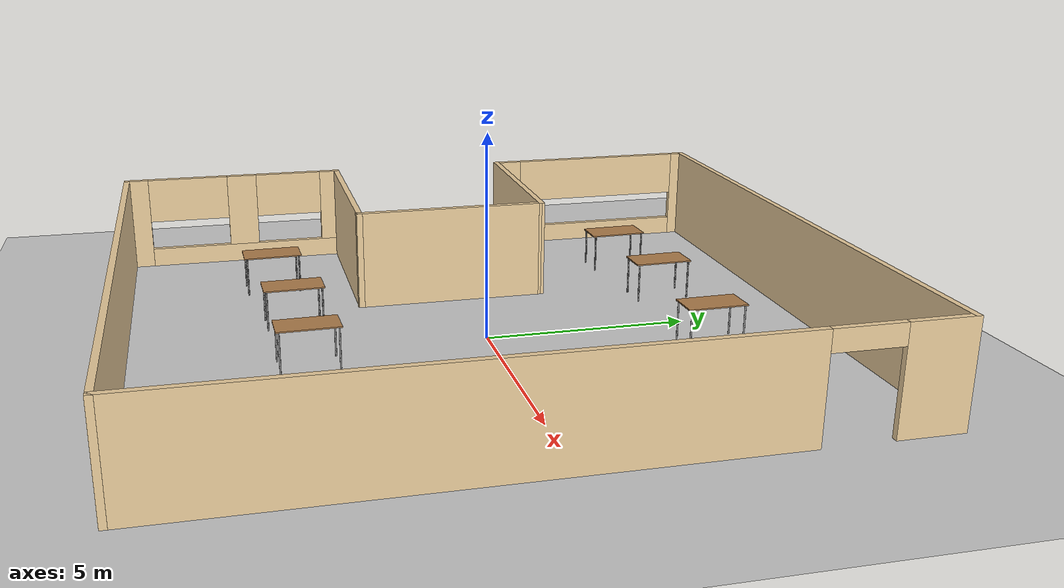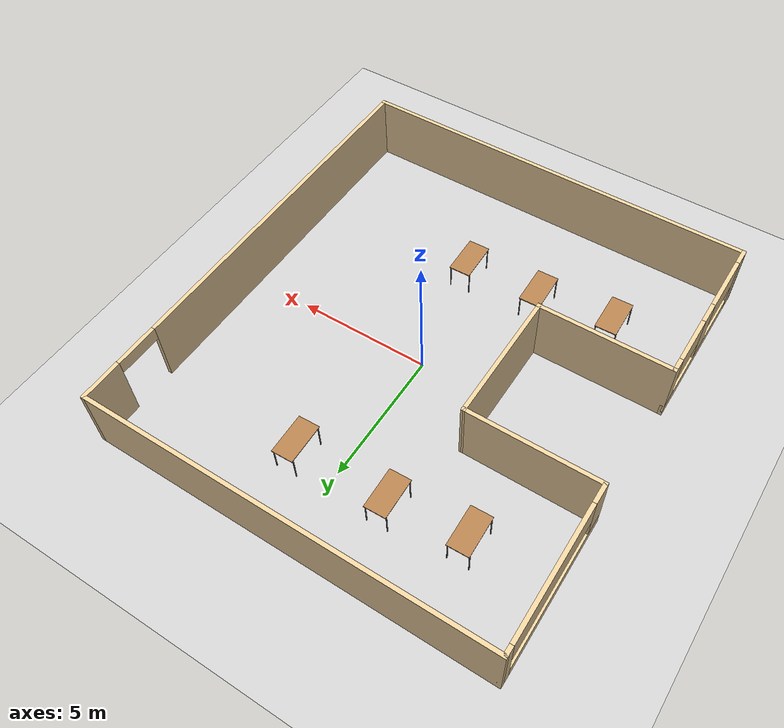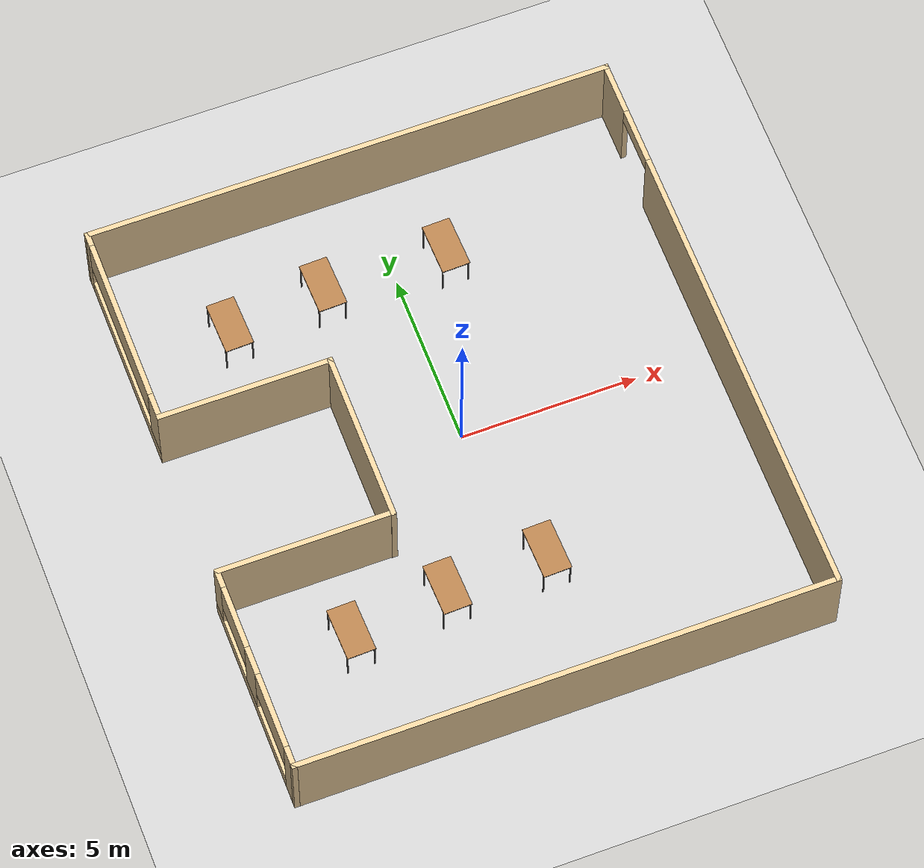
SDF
<sdf version="1.6">
 <world name="default">
  <model name="ground_plane">
   <static>1</static>
   <link name="link">
    <collision name="collision">
     <geometry><plane><normal>0 0 1</normal><size>100 100</size></plane></geometry>
     <surface>
      <contact><collide_bitmask>65535</collide_bitmask></contact>
      <friction><ode><mu>100</mu><mu2>50</mu2></ode></friction>
     </surface>
    </collision>
    <visual name="visual">
     <cast_shadows>0</cast_shadows>
     <geometry><plane><normal>0 0 1</normal><size>100 100</size></plane></geometry>
     <material>
      <script><uri>file://media/materials/scripts/gazebo.material</uri><name>Gazebo/Grey</name></script>
     </material>
    </visual>
   </link>
  </model>
  <model name="Building">
   <pose>-0.27995 -0.225979 0 0 -0 0</pose>
   <link name="Wall_21">
    <pose>7.4805 -7.8e-05 0 0 0 -1.5708</pose>
    <visual name="Wall_21_Visual_0">
     <pose>-7.53043 0 1.25 0 -0 0</pose>
     <geometry><box><size>1.57115 0.15 2.5</size></box></geometry>
     <material>
      <script><uri>file://media/materials/scripts/gazebo.material</uri><name>Gazebo/Grey</name></script>
      <ambient>0.921569 0.807843 0.615686 1</ambient>
     </material>
     <meta><layer>0</layer></meta>
    </visual>
    <collision name="Wall_21_Collision_0">
     <geometry><box><size>1.57115 0.15 2.5</size></box></geometry>
     <pose>-7.53043 0 1.25 0 -0 0</pose>
    </collision>
    <visual name="Wall_21_Visual_1">
     <pose>1.59668 0 1.25 0 -0 0</pose>
     <geometry><box><size>13.4386 0.15 2.5</size></box></geometry>
     <material>
      <script><uri>file://media/materials/scripts/gazebo.material</uri><name>Gazebo/Grey</name></script>
      <ambient>0.921569 0.807843 0.615686 1</ambient>
     </material>
     <meta><layer>0</layer></meta>
    </visual>
    <collision name="Wall_21_Collision_1">
     <geometry><box><size>13.4386 0.15 2.5</size></box></geometry>
     <pose>1.59668 0 1.25 0 -0 0</pose>
    </collision>
    <visual name="Wall_21_Visual_2">
     <pose>-5.93375 0 2.25 0 -0 0</pose>
     <geometry><box><size>1.62221 0.15 0.5</size></box></geometry>
     <material>
      <script><uri>file://media/materials/scripts/gazebo.material</uri><name>Gazebo/Grey</name></script>
      <ambient>0.921569 0.807843 0.615686 1</ambient>
     </material>
     <meta><layer>0</layer></meta>
    </visual>
    <collision name="Wall_21_Collision_2">
     <geometry><box><size>1.62221 0.15 0.5</size></box></geometry>
     <pose>-5.93375 0 2.25 0 -0 0</pose>
    </collision>
   </link>
   <link name="Wall_23">
    <collision name="Wall_23_Collision">
     <geometry><box><size>15.111 0.15 2.5</size></box></geometry>
     <pose>0 0 1.25 0 -0 0</pose>
    </collision>
    <visual name="Wall_23_Visual">
     <pose>0 0 1.25 0 -0 0</pose>
     <geometry><box><size>15.111 0.15 2.5</size></box></geometry>
     <material>
      <script><uri>file://media/materials/scripts/gazebo.material</uri><name>Gazebo/Grey</name></script>
      <ambient>0.921569 0.807843 0.615686 1</ambient>
     </material>
     <meta><layer>0</layer></meta>
    </visual>
    <pose>0 -8.24108 0 0 -0 3.14159</pose>
   </link>
   <link name="Wall_25">
    <pose>-7.4805 -5.31608 0 0 -0 1.5708</pose>
    <visual name="Wall_25_Visual_0">
     <pose>-2.67841 0 1.25 0 -0 0</pose>
     <geometry><box><size>0.64318 0.15 2.5</size></box></geometry>
     <material>
      <script><uri>file://media/materials/scripts/gazebo.material</uri><name>Gazebo/Grey</name></script>
      <ambient>0.921569 0.807843 0.615686 1</ambient>
     </material>
     <meta><layer>0</layer></meta>
    </visual>
    <collision name="Wall_25_Collision_0">
     <geometry><box><size>0.64318 0.15 2.5</size></box></geometry>
     <pose>-2.67841 0 1.25 0 -0 0</pose>
    </collision>
    <visual name="Wall_25_Visual_1">
     <pose>0.32159 0 0.25 0 -0 0</pose>
     <geometry><box><size>5.35682 0.15 0.5</size></box></geometry>
     <material>
      <script><uri>file://media/materials/scripts/gazebo.material</uri><name>Gazebo/Grey</name></script>
      <ambient>0.921569 0.807843 0.615686 1</ambient>
     </material>
     <meta><layer>0</layer></meta>
    </visual>
    <collision name="Wall_25_Collision_1">
     <geometry><box><size>5.35682 0.15 0.5</size></box></geometry>
     <pose>0.32159 0 0.25 0 -0 0</pose>
    </collision>
    <visual name="Wall_25_Visual_2">
     <pose>0.217062 0 1.5 0 -0 0</pose>
     <geometry><box><size>0.812026 0.15 2</size></box></geometry>
     <material>
      <script><uri>file://media/materials/scripts/gazebo.material</uri><name>Gazebo/Grey</name></script>
      <ambient>0.921569 0.807843 0.615686 1</ambient>
     </material>
     <meta><layer>0</layer></meta>
    </visual>
    <collision name="Wall_25_Collision_2">
     <geometry><box><size>0.812026 0.15 2</size></box></geometry>
     <pose>0.217062 0 1.5 0 -0 0</pose>
    </collision>
    <visual name="Wall_25_Visual_3">
     <pose>2.71705 0 1.5 0 -0 0</pose>
     <geometry><box><size>0.565891 0.15 2</size></box></geometry>
     <material>
      <script><uri>file://media/materials/scripts/gazebo.material</uri><name>Gazebo/Grey</name></script>
      <ambient>0.921569 0.807843 0.615686 1</ambient>
     </material>
     <meta><layer>0</layer></meta>
    </visual>
    <collision name="Wall_25_Collision_3">
     <geometry><box><size>0.565891 0.15 2</size></box></geometry>
     <pose>2.71705 0 1.5 0 -0 0</pose>
    </collision>
    <visual name="Wall_25_Visual_4">
     <pose>-1.27289 0 1.9 0 -0 0</pose>
     <geometry><box><size>2.16787 0.15 1.2</size></box></geometry>
     <material>
      <script><uri>file://media/materials/scripts/gazebo.material</uri><name>Gazebo/Grey</name></script>
      <ambient>0.921569 0.807843 0.615686 1</ambient>
     </material>
     <meta><layer>0</layer></meta>
    </visual>
    <collision name="Wall_25_Collision_4">
     <geometry><box><size>2.16787 0.15 1.2</size></box></geometry>
     <pose>-1.27289 0 1.9 0 -0 0</pose>
    </collision>
    <visual name="Wall_25_Visual_5">
     <pose>1.52859 0 1.9 0 -0 0</pose>
     <geometry><box><size>1.81103 0.15 1.2</size></box></geometry>
     <material>
      <script><uri>file://media/materials/scripts/gazebo.material</uri><name>Gazebo/Grey</name></script>
      <ambient>0.921569 0.807843 0.615686 1</ambient>
     </material>
     <meta><layer>0</layer></meta>
    </visual>
    <collision name="Wall_25_Collision_5">
     <geometry><box><size>1.81103 0.15 1.2</size></box></geometry>
     <pose>1.52859 0 1.9 0 -0 0</pose>
    </collision>
   </link>
   <link name="Wall_27">
    <pose>-7.40456 5.31608 0 0 0 -1.5708</pose>
    <visual name="Wall_27_Visual_0">
     <pose>-2.78728 0 1.25 0 -0 0</pose>
     <geometry><box><size>0.425441 0.15 2.5</size></box></geometry>
     <material>
      <script><uri>file://media/materials/scripts/gazebo.material</uri><name>Gazebo/Grey</name></script>
      <ambient>0.921569 0.807843 0.615686 1</ambient>
     </material>
     <meta><layer>0</layer></meta>
    </visual>
    <collision name="Wall_27_Collision_0">
     <geometry><box><size>0.425441 0.15 2.5</size></box></geometry>
     <pose>-2.78728 0 1.25 0 -0 0</pose>
    </collision>
    <visual name="Wall_27_Visual_1">
     <pose>0.21272 0 0.25 0 -0 0</pose>
     <geometry><box><size>5.57456 0.15 0.5</size></box></geometry>
     <material>
      <script><uri>file://media/materials/scripts/gazebo.material</uri><name>Gazebo/Grey</name></script>
      <ambient>0.921569 0.807843 0.615686 1</ambient>
     </material>
     <meta><layer>0</layer></meta>
    </visual>
    <collision name="Wall_27_Collision_1">
     <geometry><box><size>5.57456 0.15 0.5</size></box></geometry>
     <pose>0.21272 0 0.25 0 -0 0</pose>
    </collision>
    <visual name="Wall_27_Visual_2">
     <pose>2.60341 0 1.5 0 -0 0</pose>
     <geometry><box><size>0.793177 0.15 2</size></box></geometry>
     <material>
      <script><uri>file://media/materials/scripts/gazebo.material</uri><name>Gazebo/Grey</name></script>
      <ambient>0.921569 0.807843 0.615686 1</ambient>
     </material>
     <meta><layer>0</layer></meta>
    </visual>
    <collision name="Wall_27_Collision_2">
     <geometry><box><size>0.793177 0.15 2</size></box></geometry>
     <pose>2.60341 0 1.5 0 -0 0</pose>
    </collision>
    <visual name="Wall_27_Visual_3">
     <pose>-0.183868 0 1.9 0 -0 0</pose>
     <geometry><box><size>4.78138 0.15 1.2</size></box></geometry>
     <material>
      <script><uri>file://media/materials/scripts/gazebo.material</uri><name>Gazebo/Grey</name></script>
      <ambient>0.921569 0.807843 0.615686 1</ambient>
     </material>
     <meta><layer>0</layer></meta>
    </visual>
    <collision name="Wall_27_Collision_3">
     <geometry><box><size>4.78138 0.15 1.2</size></box></geometry>
     <pose>-0.183868 0 1.9 0 -0 0</pose>
    </collision>
   </link>
   <link name="Wall_29">
    <collision name="Wall_29_Collision">
     <geometry><box><size>5 0.15 2.5</size></box></geometry>
     <pose>0 0 1.25 0 -0 0</pose>
    </collision>
    <visual name="Wall_29_Visual">
     <pose>0 0 1.25 0 -0 0</pose>
     <geometry><box><size>5 0.15 2.5</size></box></geometry>
     <material>
      <script><uri>file://media/materials/scripts/gazebo.material</uri><name>Gazebo/Grey</name></script>
      <ambient>0.921569 0.807843 0.615686 1</ambient>
     </material>
     <meta><layer>0</layer></meta>
    </visual>
    <pose>-5.0555 -2.39108 0 0 -0 0</pose>
   </link>
   <link name="Wall_31">
    <collision name="Wall_31_Collision">
     <geometry><box><size>4.93122 0.15 2.5</size></box></geometry>
     <pose>0 0 1.25 0 -0 0</pose>
    </collision>
    <visual name="Wall_31_Visual">
     <pose>0 0 1.25 0 -0 0</pose>
     <geometry><box><size>4.93122 0.15 2.5</size></box></geometry>
     <material>
      <script><uri>file://media/materials/scripts/gazebo.material</uri><name>Gazebo/Grey</name></script>
      <ambient>0.921569 0.807843 0.615686 1</ambient>
     </material>
     <meta><layer>0</layer></meta>
    </visual>
    <pose>-5.01395 2.39108 0 0 -0 0</pose>
   </link>
   <link name="Wall_32">
    <collision name="Wall_32_Collision">
     <geometry><box><size>4.94559 0.15 2.5</size></box></geometry>
     <pose>0 0 1.25 0 -0 0</pose>
    </collision>
    <visual name="Wall_32_Visual">
     <pose>0 0 1.25 0 -0 0</pose>
     <geometry><box><size>4.94559 0.15 2.5</size></box></geometry>
     <material>
      <script><uri>file://media/materials/scripts/gazebo.material</uri><name>Gazebo/Grey</name></script>
      <ambient>0.921569 0.807843 0.615686 1</ambient>
     </material>
     <meta><layer>0</layer></meta>
    </visual>
    <pose>-2.62742 -0.006716 0 0 0 -1.5725</pose>
   </link>
   <link name="Wall_9">
    <collision name="Wall_9_Collision">
     <geometry><box><size>15.0351 0.15 2.5</size></box></geometry>
     <pose>0 0 1.25 0 -0 0</pose>
    </collision>
    <visual name="Wall_9_Visual">
     <pose>0 0 1.25 0 -0 0</pose>
     <geometry><box><size>15.0351 0.15 2.5</size></box></geometry>
     <material>
      <script><uri>file://media/materials/scripts/gazebo.material</uri><name>Gazebo/Grey</name></script>
      <ambient>0.921569 0.807843 0.615686 1</ambient>
     </material>
     <meta><layer>0</layer></meta>
    </visual>
    <pose>0.037971 8.241 0 0 0 -1.1e-05</pose>
   </link>
   <static>1</static>
  </model>
  <model name="table">
   <static>1</static>
   <link name="link">
    <collision name="surface">
     <pose>0 0 1 0 -0 0</pose>
     <geometry><box><size>1.5 0.8 0.03</size></box></geometry>
     <surface><friction><ode><mu>0.6</mu><mu2>0.6</mu2></ode></friction></surface>
    </collision>
    <visual name="visual1">
     <pose>0 0 1 0 -0 0</pose>
     <geometry><box><size>1.5 0.8 0.03</size></box></geometry>
     <material>
      <script><uri>file://media/materials/scripts/gazebo.material</uri><name>Gazebo/Wood</name></script>
     </material>
    </visual>
    <collision name="front_left_leg">
     <pose>0.68 0.38 0.5 0 -0 0</pose>
     <geometry><cylinder><radius>0.02</radius><length>1</length></cylinder></geometry>
    </collision>
    <visual name="front_left_leg">
     <pose>0.68 0.38 0.5 0 -0 0</pose>
     <geometry><cylinder><radius>0.02</radius><length>1</length></cylinder></geometry>
     <material>
      <script><uri>file://media/materials/scripts/gazebo.material</uri><name>Gazebo/Grey</name></script>
     </material>
    </visual>
    <collision name="front_right_leg">
     <pose>0.68 -0.38 0.5 0 -0 0</pose>
     <geometry><cylinder><radius>0.02</radius><length>1</length></cylinder></geometry>
    </collision>
    <visual name="front_right_leg">
     <pose>0.68 -0.38 0.5 0 -0 0</pose>
     <geometry><cylinder><radius>0.02</radius><length>1</length></cylinder></geometry>
     <material>
      <script><uri>file://media/materials/scripts/gazebo.material</uri><name>Gazebo/Grey</name></script>
     </material>
    </visual>
    <collision name="back_right_leg">
     <pose>-0.68 -0.38 0.5 0 -0 0</pose>
     <geometry><cylinder><radius>0.02</radius><length>1</length></cylinder></geometry>
    </collision>
    <visual name="back_right_leg">
     <pose>-0.68 -0.38 0.5 0 -0 0</pose>
     <geometry><cylinder><radius>0.02</radius><length>1</length></cylinder></geometry>
     <material>
      <script><uri>file://media/materials/scripts/gazebo.material</uri><name>Gazebo/Grey</name></script>
     </material>
    </visual>
    <collision name="back_left_leg">
     <pose>-0.68 0.38 0.5 0 -0 0</pose>
     <geometry><cylinder><radius>0.02</radius><length>1</length></cylinder></geometry>
    </collision>
    <visual name="back_left_leg">
     <pose>-0.68 0.38 0.5 0 -0 0</pose>
     <geometry><cylinder><radius>0.02</radius><length>1</length></cylinder></geometry>
     <material>
      <script><uri>file://media/materials/scripts/gazebo.material</uri><name>Gazebo/Grey</name></script>
     </material>
    </visual>
   </link>
   <pose>-4.81339 4.89168 0 0 0 -1.54267</pose>
  </model>
  <model name="table_clone">
   <static>1</static>
   <link name="link">
    <collision name="surface">
     <pose>0 0 1 0 -0 0</pose>
     <geometry><box><size>1.5 0.8 0.03</size></box></geometry>
     <surface><friction><ode><mu>0.6</mu><mu2>0.6</mu2></ode></friction></surface>
    </collision>
    <visual name="visual1">
     <pose>0 0 1 0 -0 0</pose>
     <geometry><box><size>1.5 0.8 0.03</size></box></geometry>
     <material>
      <script><uri>file://media/materials/scripts/gazebo.material</uri><name>Gazebo/Wood</name></script>
     </material>
    </visual>
    <collision name="front_left_leg">
     <pose>0.68 0.38 0.5 0 -0 0</pose>
     <geometry><cylinder><radius>0.02</radius><length>1</length></cylinder></geometry>
    </collision>
    <visual name="front_left_leg">
     <pose>0.68 0.38 0.5 0 -0 0</pose>
     <geometry><cylinder><radius>0.02</radius><length>1</length></cylinder></geometry>
     <material>
      <script><uri>file://media/materials/scripts/gazebo.material</uri><name>Gazebo/Grey</name></script>
     </material>
    </visual>
    <collision name="front_right_leg">
     <pose>0.68 -0.38 0.5 0 -0 0</pose>
     <geometry><cylinder><radius>0.02</radius><length>1</length></cylinder></geometry>
    </collision>
    <visual name="front_right_leg">
     <pose>0.68 -0.38 0.5 0 -0 0</pose>
     <geometry><cylinder><radius>0.02</radius><length>1</length></cylinder></geometry>
     <material>
      <script><uri>file://media/materials/scripts/gazebo.material</uri><name>Gazebo/Grey</name></script>
     </material>
    </visual>
    <collision name="back_right_leg">
     <pose>-0.68 -0.38 0.5 0 -0 0</pose>
     <geometry><cylinder><radius>0.02</radius><length>1</length></cylinder></geometry>
    </collision>
    <visual name="back_right_leg">
     <pose>-0.68 -0.38 0.5 0 -0 0</pose>
     <geometry><cylinder><radius>0.02</radius><length>1</length></cylinder></geometry>
     <material>
      <script><uri>file://media/materials/scripts/gazebo.material</uri><name>Gazebo/Grey</name></script>
     </material>
    </visual>
    <collision name="back_left_leg">
     <pose>-0.68 0.38 0.5 0 -0 0</pose>
     <geometry><cylinder><radius>0.02</radius><length>1</length></cylinder></geometry>
    </collision>
    <visual name="back_left_leg">
     <pose>-0.68 0.38 0.5 0 -0 0</pose>
     <geometry><cylinder><radius>0.02</radius><length>1</length></cylinder></geometry>
     <material>
      <script><uri>file://media/materials/scripts/gazebo.material</uri><name>Gazebo/Grey</name></script>
     </material>
    </visual>
   </link>
   <pose>-2.05925 5.16019 0 0 0 -1.54267</pose>
  </model>
  <model name="table_clone_0">
   <static>1</static>
   <link name="link">
    <collision name="surface">
     <pose>0 0 1 0 -0 0</pose>
     <geometry><box><size>1.5 0.8 0.03</size></box></geometry>
     <surface><friction><ode><mu>0.6</mu><mu2>0.6</mu2></ode></friction></surface>
    </collision>
    <visual name="visual1">
     <pose>0 0 1 0 -0 0</pose>
     <geometry><box><size>1.5 0.8 0.03</size></box></geometry>
     <material>
      <script><uri>file://media/materials/scripts/gazebo.material</uri><name>Gazebo/Wood</name></script>
     </material>
    </visual>
    <collision name="front_left_leg">
     <pose>0.68 0.38 0.5 0 -0 0</pose>
     <geometry><cylinder><radius>0.02</radius><length>1</length></cylinder></geometry>
    </collision>
    <visual name="front_left_leg">
     <pose>0.68 0.38 0.5 0 -0 0</pose>
     <geometry><cylinder><radius>0.02</radius><length>1</length></cylinder></geometry>
     <material>
      <script><uri>file://media/materials/scripts/gazebo.material</uri><name>Gazebo/Grey</name></script>
     </material>
    </visual>
    <collision name="front_right_leg">
     <pose>0.68 -0.38 0.5 0 -0 0</pose>
     <geometry><cylinder><radius>0.02</radius><length>1</length></cylinder></geometry>
    </collision>
    <visual name="front_right_leg">
     <pose>0.68 -0.38 0.5 0 -0 0</pose>
     <geometry><cylinder><radius>0.02</radius><length>1</length></cylinder></geometry>
     <material>
      <script><uri>file://media/materials/scripts/gazebo.material</uri><name>Gazebo/Grey</name></script>
     </material>
    </visual>
    <collision name="back_right_leg">
     <pose>-0.68 -0.38 0.5 0 -0 0</pose>
     <geometry><cylinder><radius>0.02</radius><length>1</length></cylinder></geometry>
    </collision>
    <visual name="back_right_leg">
     <pose>-0.68 -0.38 0.5 0 -0 0</pose>
     <geometry><cylinder><radius>0.02</radius><length>1</length></cylinder></geometry>
     <material>
      <script><uri>file://media/materials/scripts/gazebo.material</uri><name>Gazebo/Grey</name></script>
     </material>
    </visual>
    <collision name="back_left_leg">
     <pose>-0.68 0.38 0.5 0 -0 0</pose>
     <geometry><cylinder><radius>0.02</radius><length>1</length></cylinder></geometry>
    </collision>
    <visual name="back_left_leg">
     <pose>-0.68 0.38 0.5 0 -0 0</pose>
     <geometry><cylinder><radius>0.02</radius><length>1</length></cylinder></geometry>
     <material>
      <script><uri>file://media/materials/scripts/gazebo.material</uri><name>Gazebo/Grey</name></script>
     </material>
    </visual>
   </link>
   <pose>1.46526 5.12453 0 0 0 -1.54267</pose>
  </model>
  <model name="table_clone_1">
   <static>1</static>
   <link name="link">
    <collision name="surface">
     <pose>0 0 1 0 -0 0</pose>
     <geometry><box><size>1.5 0.8 0.03</size></box></geometry>
     <surface><friction><ode><mu>0.6</mu><mu2>0.6</mu2></ode></friction></surface>
    </collision>
    <visual name="visual1">
     <pose>0 0 1 0 -0 0</pose>
     <geometry><box><size>1.5 0.8 0.03</size></box></geometry>
     <material>
      <script><uri>file://media/materials/scripts/gazebo.material</uri><name>Gazebo/Wood</name></script>
     </material>
    </visual>
    <collision name="front_left_leg">
     <pose>0.68 0.38 0.5 0 -0 0</pose>
     <geometry><cylinder><radius>0.02</radius><length>1</length></cylinder></geometry>
    </collision>
    <visual name="front_left_leg">
     <pose>0.68 0.38 0.5 0 -0 0</pose>
     <geometry><cylinder><radius>0.02</radius><length>1</length></cylinder></geometry>
     <material>
      <script><uri>file://media/materials/scripts/gazebo.material</uri><name>Gazebo/Grey</name></script>
     </material>
    </visual>
    <collision name="front_right_leg">
     <pose>0.68 -0.38 0.5 0 -0 0</pose>
     <geometry><cylinder><radius>0.02</radius><length>1</length></cylinder></geometry>
    </collision>
    <visual name="front_right_leg">
     <pose>0.68 -0.38 0.5 0 -0 0</pose>
     <geometry><cylinder><radius>0.02</radius><length>1</length></cylinder></geometry>
     <material>
      <script><uri>file://media/materials/scripts/gazebo.material</uri><name>Gazebo/Grey</name></script>
     </material>
    </visual>
    <collision name="back_right_leg">
     <pose>-0.68 -0.38 0.5 0 -0 0</pose>
     <geometry><cylinder><radius>0.02</radius><length>1</length></cylinder></geometry>
    </collision>
    <visual name="back_right_leg">
     <pose>-0.68 -0.38 0.5 0 -0 0</pose>
     <geometry><cylinder><radius>0.02</radius><length>1</length></cylinder></geometry>
     <material>
      <script><uri>file://media/materials/scripts/gazebo.material</uri><name>Gazebo/Grey</name></script>
     </material>
    </visual>
    <collision name="back_left_leg">
     <pose>-0.68 0.38 0.5 0 -0 0</pose>
     <geometry><cylinder><radius>0.02</radius><length>1</length></cylinder></geometry>
    </collision>
    <visual name="back_left_leg">
     <pose>-0.68 0.38 0.5 0 -0 0</pose>
     <geometry><cylinder><radius>0.02</radius><length>1</length></cylinder></geometry>
     <material>
      <script><uri>file://media/materials/scripts/gazebo.material</uri><name>Gazebo/Grey</name></script>
     </material>
    </visual>
   </link>
   <pose>-4.87577 -4.74363 0 0 0 -1.54267</pose>
  </model>
  <model name="table_clone_2">
   <static>1</static>
   <link name="link">
    <collision name="surface">
     <pose>0 0 1 0 -0 0</pose>
     <geometry><box><size>1.5 0.8 0.03</size></box></geometry>
     <surface><friction><ode><mu>0.6</mu><mu2>0.6</mu2></ode></friction></surface>
    </collision>
    <visual name="visual1">
     <pose>0 0 1 0 -0 0</pose>
     <geometry><box><size>1.5 0.8 0.03</size></box></geometry>
     <material>
      <script><uri>file://media/materials/scripts/gazebo.material</uri><name>Gazebo/Wood</name></script>
     </material>
    </visual>
    <collision name="front_left_leg">
     <pose>0.68 0.38 0.5 0 -0 0</pose>
     <geometry><cylinder><radius>0.02</radius><length>1</length></cylinder></geometry>
    </collision>
    <visual name="front_left_leg">
     <pose>0.68 0.38 0.5 0 -0 0</pose>
     <geometry><cylinder><radius>0.02</radius><length>1</length></cylinder></geometry>
     <material>
      <script><uri>file://media/materials/scripts/gazebo.material</uri><name>Gazebo/Grey</name></script>
     </material>
    </visual>
    <collision name="front_right_leg">
     <pose>0.68 -0.38 0.5 0 -0 0</pose>
     <geometry><cylinder><radius>0.02</radius><length>1</length></cylinder></geometry>
    </collision>
    <visual name="front_right_leg">
     <pose>0.68 -0.38 0.5 0 -0 0</pose>
     <geometry><cylinder><radius>0.02</radius><length>1</length></cylinder></geometry>
     <material>
      <script><uri>file://media/materials/scripts/gazebo.material</uri><name>Gazebo/Grey</name></script>
     </material>
    </visual>
    <collision name="back_right_leg">
     <pose>-0.68 -0.38 0.5 0 -0 0</pose>
     <geometry><cylinder><radius>0.02</radius><length>1</length></cylinder></geometry>
    </collision>
    <visual name="back_right_leg">
     <pose>-0.68 -0.38 0.5 0 -0 0</pose>
     <geometry><cylinder><radius>0.02</radius><length>1</length></cylinder></geometry>
     <material>
      <script><uri>file://media/materials/scripts/gazebo.material</uri><name>Gazebo/Grey</name></script>
     </material>
    </visual>
    <collision name="back_left_leg">
     <pose>-0.68 0.38 0.5 0 -0 0</pose>
     <geometry><cylinder><radius>0.02</radius><length>1</length></cylinder></geometry>
    </collision>
    <visual name="back_left_leg">
     <pose>-0.68 0.38 0.5 0 -0 0</pose>
     <geometry><cylinder><radius>0.02</radius><length>1</length></cylinder></geometry>
     <material>
      <script><uri>file://media/materials/scripts/gazebo.material</uri><name>Gazebo/Grey</name></script>
     </material>
    </visual>
   </link>
   <pose>-2.08085 -4.42474 0 0 0 -1.54267</pose>
  </model>
  <model name="table_clone_3">
   <static>1</static>
   <link name="link">
    <collision name="surface">
     <pose>0 0 1 0 -0 0</pose>
     <geometry><box><size>1.5 0.8 0.03</size></box></geometry>
     <surface><friction><ode><mu>0.6</mu><mu2>0.6</mu2></ode></friction></surface>
    </collision>
    <visual name="visual1">
     <pose>0 0 1 0 -0 0</pose>
     <geometry><box><size>1.5 0.8 0.03</size></box></geometry>
     <material>
      <script><uri>file://media/materials/scripts/gazebo.material</uri><name>Gazebo/Wood</name></script>
     </material>
    </visual>
    <collision name="front_left_leg">
     <pose>0.68 0.38 0.5 0 -0 0</pose>
     <geometry><cylinder><radius>0.02</radius><length>1</length></cylinder></geometry>
    </collision>
    <visual name="front_left_leg">
     <pose>0.68 0.38 0.5 0 -0 0</pose>
     <geometry><cylinder><radius>0.02</radius><length>1</length></cylinder></geometry>
     <material>
      <script><uri>file://media/materials/scripts/gazebo.material</uri><name>Gazebo/Grey</name></script>
     </material>
    </visual>
    <collision name="front_right_leg">
     <pose>0.68 -0.38 0.5 0 -0 0</pose>
     <geometry><cylinder><radius>0.02</radius><length>1</length></cylinder></geometry>
    </collision>
    <visual name="front_right_leg">
     <pose>0.68 -0.38 0.5 0 -0 0</pose>
     <geometry><cylinder><radius>0.02</radius><length>1</length></cylinder></geometry>
     <material>
      <script><uri>file://media/materials/scripts/gazebo.material</uri><name>Gazebo/Grey</name></script>
     </material>
    </visual>
    <collision name="back_right_leg">
     <pose>-0.68 -0.38 0.5 0 -0 0</pose>
     <geometry><cylinder><radius>0.02</radius><length>1</length></cylinder></geometry>
    </collision>
    <visual name="back_right_leg">
     <pose>-0.68 -0.38 0.5 0 -0 0</pose>
     <geometry><cylinder><radius>0.02</radius><length>1</length></cylinder></geometry>
     <material>
      <script><uri>file://media/materials/scripts/gazebo.material</uri><name>Gazebo/Grey</name></script>
     </material>
    </visual>
    <collision name="back_left_leg">
     <pose>-0.68 0.38 0.5 0 -0 0</pose>
     <geometry><cylinder><radius>0.02</radius><length>1</length></cylinder></geometry>
    </collision>
    <visual name="back_left_leg">
     <pose>-0.68 0.38 0.5 0 -0 0</pose>
     <geometry><cylinder><radius>0.02</radius><length>1</length></cylinder></geometry>
     <material>
      <script><uri>file://media/materials/scripts/gazebo.material</uri><name>Gazebo/Grey</name></script>
     </material>
    </visual>
   </link>
   <pose>0.742098 -4.34563 0 0 0 -1.54267</pose>
  </model>
 </world>
</sdf>
